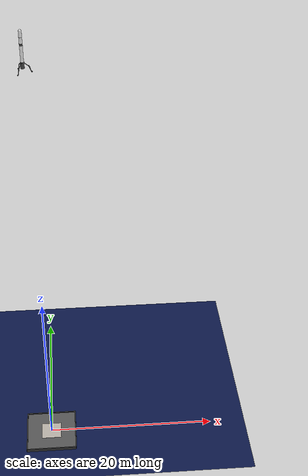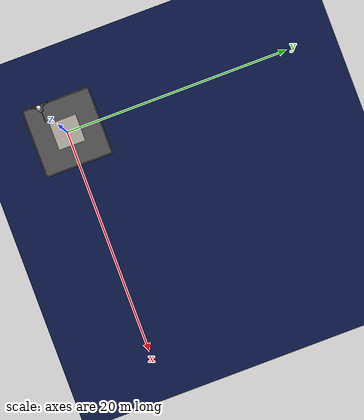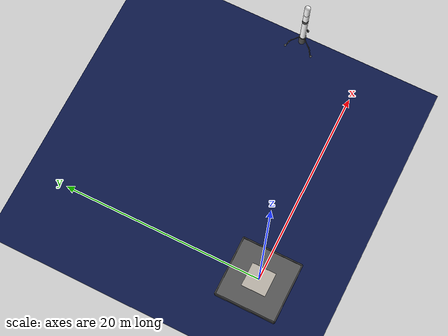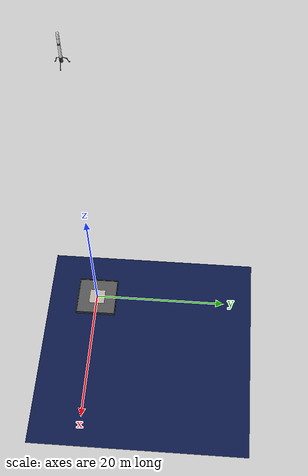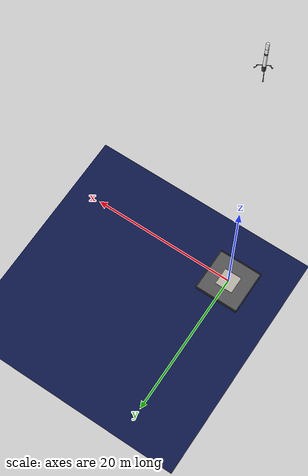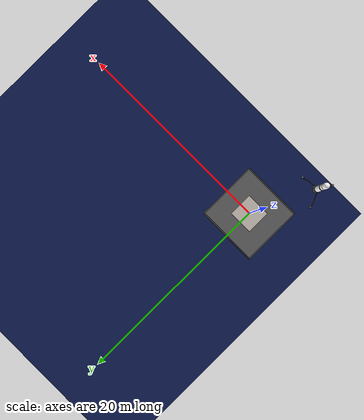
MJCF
<mujoco model="rocket_showcase">
    <option timestep="0.005"/>

    <!-- Visual settings: sky background -->
    <visual>
        <global offwidth="1920" offheight="1080"/>
        <rgba fog="0.6 0.8 1.0 1"/>
    </visual>

    <!-- Assets -->
    <asset>
        <texture name="sky" type="skybox" builtin="gradient" rgb1="0.4 0.6 0.9" rgb2="0.8 0.9 1.0" width="512" height="512"/>
        <texture name="spacex_x" type="2d" file="spaceX_Xonly_logo.png"/>

        <material name="ocean" rgba="0.05 0.1 0.3 1" reflectance="0.3" shininess="0.8" specular="0.5"/>
        <material name="barge_deck" rgba="0.35 0.35 0.35 1" reflectance="0.1"/>
        <material name="barge_border" rgba="0.25 0.25 0.25 1"/>
        <material name="logo_mat" texture="spacex_x" rgba="1 1 1 1" emission="0.3"/>
        <material name="target_material" rgba="1 0 0 0.3"/>
        <material name="rocket_body" rgba="1 1 1 1" emission="1"/>
        <material name="rocket_dark" rgba="0.3 0.3 0.3 1" emission="0.5"/>
        <material name="leg_material" rgba="0.4 0.4 0.4 1" emission="0.5"/>
    </asset>

    <!-- Worldbody -->
    <worldbody>
        <!-- Ocean floor -->
        <geom name="floor" type="plane" pos="0 0 -0.3" size="200 200 0.1" material="ocean"/>

        <!-- General diffuse lighting -->
        <light name="light" pos="0 0 100" dir="0 0 -1" diffuse="0.8 0.8 0.8" ambient="0.4 0.4 0.4" castshadow="false"/>

        <!-- Landing barge -->
        <body name="barge" pos="0 0 0">
            <!-- Main deck -->
            <geom name="barge_deck" type="box" size="3 3 0.15" pos="0 0 -0.15" material="barge_deck"/>

            <!-- Deck border rails -->
            <geom name="border_front" type="box" size="3 0.06 0.2" pos="0 3 -0.1" material="barge_border" contype="0" conaffinity="0"/>
            <geom name="border_back" type="box" size="3 0.06 0.2" pos="0 -3 -0.1" material="barge_border" contype="0" conaffinity="0"/>
            <geom name="border_left" type="box" size="0.06 3 0.2" pos="-3 0 -0.1" material="barge_border" contype="0" conaffinity="0"/>
            <geom name="border_right" type="box" size="0.06 3 0.2" pos="3 0 -0.1" material="barge_border" contype="0" conaffinity="0"/>

            <!-- SpaceX X logo on deck -->
            <geom name="logo" type="box" size="1.2 1.2 0.002" pos="0 0 0.003" material="logo_mat" contype="0" conaffinity="0"/>

            <!-- Target circle (invisible, for env compatibility) -->
            <geom name="target_circle" type="cylinder" size="1.5 0.001" pos="0 0 0.01" rgba="0 0 0 0" contype="0" conaffinity="0"/>
        </body>

        <!-- Target cross (invisible, for env compatibility) -->
        <geom name="target_x1" type="box" size="0.75 0.05 0.001" pos="0 0 0.012" rgba="0 0 0 0" contype="0" conaffinity="0"/>
        <geom name="target_x2" type="box" size="0.05 0.75 0.001" pos="0 0 0.012" rgba="0 0 0 0" contype="0" conaffinity="0"/>

        <!-- Rocket (v1 tripod design - matching rocket_v1_three_legs.xml physics) -->
        <body name="rocket" pos="0 0 50">
            <joint name="rocket_free" type="free"/>

            <!-- Main body -->
            <geom name="rocket_body_main" type="cylinder" size="0.15 1.5" pos="0 0 0" material="rocket_body" mass="8"/>

            <!-- Nose cone -->
            <geom name="nose_cone" type="capsule" size="0.15 0.3" pos="0 0 1.8" material="rocket_body" mass="0.5"/>

            <!-- Black interstage band -->
            <geom name="interstage" type="cylinder" size="0.155 0.1" pos="0 0 0.8" material="rocket_dark" mass="0.1"/>

            <!-- Engine section -->
            <geom name="engine_section" type="cylinder" size="0.18 0.3" pos="0 0 -1.2" material="rocket_dark" mass="0.3"/>

            <!-- Landing Leg 1: 0° (positive X) -->
            <body name="leg1" pos="0.15 0 -1.3">
                <geom name="leg1_upper" type="capsule" size="0.02 0.4" pos="0.25 0 0.15" euler="0 -50 0" material="leg_material" mass="0.12"/>
                <geom name="leg1_lower" type="capsule" size="0.025 0.35" pos="0.55 0 -0.25" euler="0 -20 0" material="leg_material" mass="0.1"/>
                <geom name="leg1_foot" type="sphere" size="0.06" pos="0.7 0 -0.55" material="leg_material" mass="0.05"/>
            </body>

            <!-- Landing Leg 2: 120° -->
            <body name="leg2" pos="-0.075 0.13 -1.3" euler="0 0 120">
                <geom name="leg2_upper" type="capsule" size="0.02 0.4" pos="0.25 0 0.15" euler="0 -50 0" material="leg_material" mass="0.12"/>
                <geom name="leg2_lower" type="capsule" size="0.025 0.35" pos="0.55 0 -0.25" euler="0 -20 0" material="leg_material" mass="0.1"/>
                <geom name="leg2_foot" type="sphere" size="0.06" pos="0.7 0 -0.55" material="leg_material" mass="0.05"/>
            </body>

            <!-- Landing Leg 3: 240° -->
            <body name="leg3" pos="-0.075 -0.13 -1.3" euler="0 0 240">
                <geom name="leg3_upper" type="capsule" size="0.02 0.4" pos="0.25 0 0.15" euler="0 -50 0" material="leg_material" mass="0.12"/>
                <geom name="leg3_lower" type="capsule" size="0.025 0.35" pos="0.55 0 -0.25" euler="0 -20 0" material="leg_material" mass="0.1"/>
                <geom name="leg3_foot" type="sphere" size="0.06" pos="0.7 0 -0.55" material="leg_material" mass="0.05"/>
            </body>

            <!-- Thruster site -->
            <site name="thruster_site" pos="0 0 -1.5" size="0.05" rgba="1 0.5 0 1"/>
            <site name="gyro_site" pos="0 0 0" size="0.1"/>
        </body>
    </worldbody>

    <!-- Actuators (identical to rocket_v1_three_legs.xml) -->
    <actuator>
        <motor name="thrust_x" site="thruster_site" gear="25 0 0 0 0 0" ctrllimited="true" ctrlrange="-1 1"/>
        <motor name="thrust_y" site="thruster_site" gear="0 25 0 0 0 0" ctrllimited="true" ctrlrange="-1 1"/>
        <motor name="thrust_z" site="thruster_site" gear="0 0 200 0 0 0" ctrllimited="true" ctrlrange="0 1"/>
    </actuator>
</mujoco>
